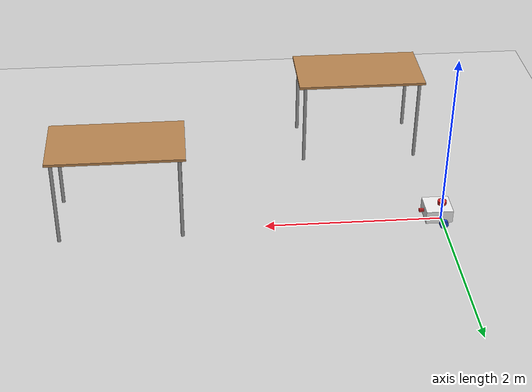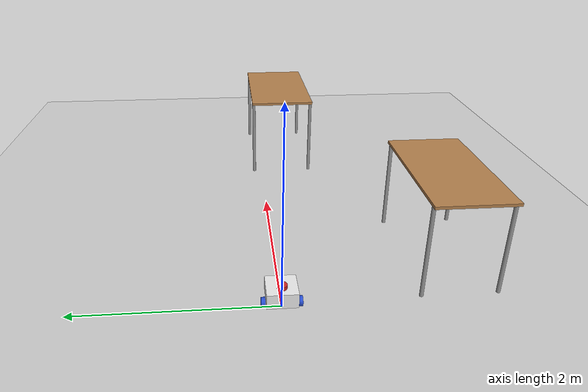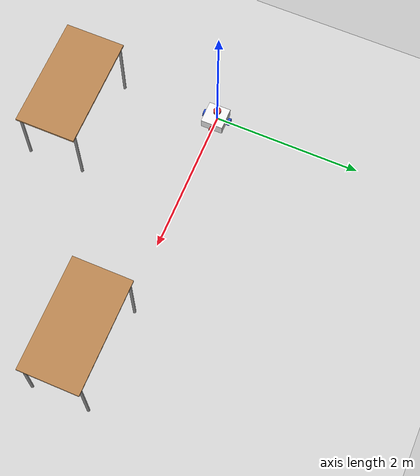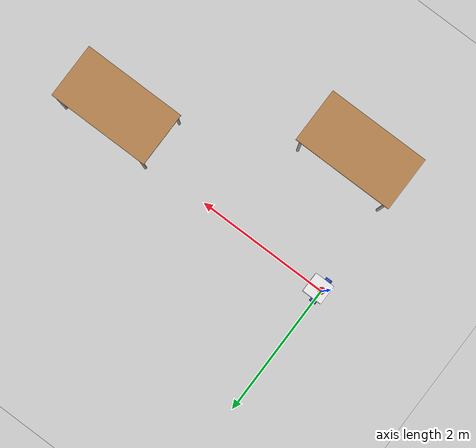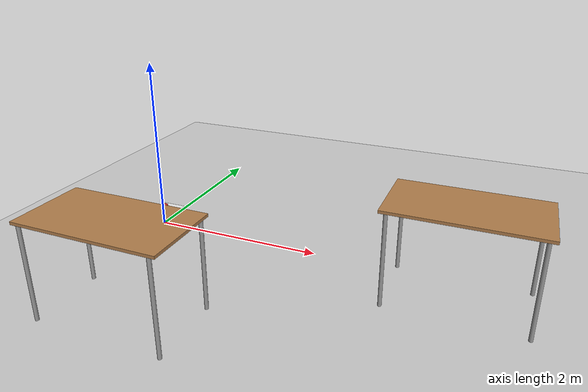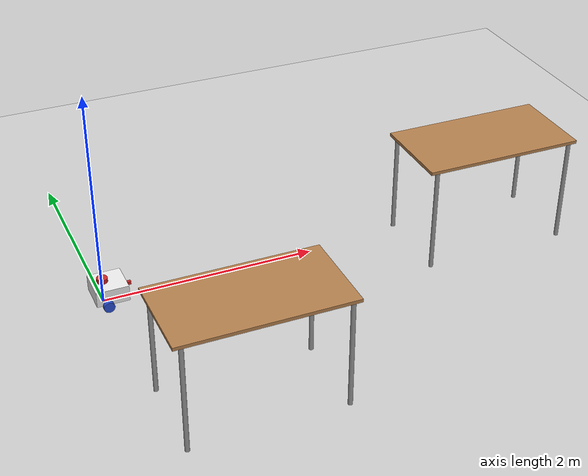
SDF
<sdf version="1.7">
 <world name="default">
  <light name="sun" type="directional">
   <pose>0 0 10 0 -0 0</pose>
   <diffuse>0.8 0.8 0.8 1</diffuse>
   <specular>0.2 0.2 0.2 1</specular>
   <attenuation>
    <range>1000</range>
    <constant>0.9</constant>
    <linear>0.01</linear>
    <quadratic>0.001</quadratic>
   </attenuation>
   <direction>-0.5 0.1 -0.9</direction>
   <spot><inner_angle>0</inner_angle><outer_angle>0</outer_angle><falloff>0</falloff></spot>
  </light>
  <model name="ground_plane">
   <static>1</static>
   <link name="link">
    <collision name="collision">
     <geometry><plane><normal>0 0 1</normal><size>100 100</size></plane></geometry>
     <surface>
      <contact><collide_bitmask>65535</collide_bitmask></contact>
      <friction><ode><mu>100</mu><mu2>50</mu2></ode></friction>
     </surface>
    </collision>
    <visual name="visual">
     <cast_shadows>0</cast_shadows>
     <geometry><plane><normal>0 0 1</normal><size>100 100</size></plane></geometry>
     <material>
      <script><uri>file://media/materials/scripts/gazebo.material</uri><name>Gazebo/Grey</name></script>
     </material>
    </visual>
   </link>
  </model>
  <gravity>0 0 -9.8</gravity>
  <magnetic_field>6e-06 2.3e-05 -4.2e-05</magnetic_field>
  <atmosphere type="adiabatic"/>
  <physics type="ode">
   <max_step_size>0.001</max_step_size>
   <real_time_factor>1</real_time_factor>
   <real_time_update_rate>1000</real_time_update_rate>
  </physics>
  <scene><ambient>0.4 0.4 0.4 1</ambient><background>0.7 0.7 0.7 1</background><shadows>1</shadows></scene>
  <spherical_coordinates>
   <surface_model>EARTH_WGS84</surface_model>
   <latitude_deg>0</latitude_deg>
   <longitude_deg>0</longitude_deg>
   <elevation>0</elevation>
   <heading_deg>0</heading_deg>
  </spherical_coordinates>
  <model name="my_bot">
   <link name="base_link">
    <inertial>
     <pose>0.057143 0 0.078571 0 -0 0</pose>
     <mass>0.7</mass>
     <inertia>
      <ixx>0.0064169</ixx>
      <ixy>0</ixy>
      <ixz>0.00126786</ixz>
      <iyy>0.00763119</iyy>
      <iyz>0</iyz>
      <izz>0.00893929</izz>
     </inertia>
    </inertial>
    <collision name="base_link_fixed_joint_lump__caster_wheel_collision">
     <pose>0.15 0 0 0 -0 0</pose>
     <geometry><sphere><radius>0.05</radius></sphere></geometry>
     <surface><friction><ode><mu>0.001</mu><mu2>0.001</mu2></ode></friction></surface>
    </collision>
    <collision name="base_link_fixed_joint_lump__chassis_collision_1">
     <pose>0.05 0 0.075 0 -0 0</pose>
     <geometry><box><size>0.3 0.3 0.15</size></box></geometry>
    </collision>
    <collision name="base_link_fixed_joint_lump__laser_frame_collision_2">
     <pose>0 0 0.175 0 -0 0</pose>
     <geometry><cylinder><length>0.04</length><radius>0.05</radius></cylinder></geometry>
    </collision>
    <visual name="base_link_fixed_joint_lump__caster_wheel_visual">
     <pose>0.15 0 0 0 -0 0</pose>
     <geometry><sphere><radius>0.05</radius></sphere></geometry>
     <material>
      <script><name>Gazebo/Black</name><uri>file://media/materials/scripts/gazebo.material</uri></script>
     </material>
    </visual>
    <visual name="base_link_fixed_joint_lump__chassis_visual_1">
     <pose>0.05 0 0.075 0 -0 0</pose>
     <geometry><box><size>0.3 0.3 0.15</size></box></geometry>
     <material>
      <script><name>Gazebo/White</name><uri>file://media/materials/scripts/gazebo.material</uri></script>
     </material>
    </visual>
    <visual name="base_link_fixed_joint_lump__camera_link_visual_2">
     <pose>0.205 0 0.08 0 -0 0</pose>
     <geometry><box><size>0.1 0.03 0.03</size></box></geometry>
     <material>
      <script><name>Gazebo/Red</name><uri>file://media/materials/scripts/gazebo.material</uri></script>
     </material>
    </visual>
    <visual name="base_link_fixed_joint_lump__laser_frame_visual_3">
     <pose>0 0 0.175 0 -0 0</pose>
     <geometry><cylinder><length>0.04</length><radius>0.05</radius></cylinder></geometry>
     <material>
      <script><name>Gazebo/Red</name><uri>file://media/materials/scripts/gazebo.material</uri></script>
     </material>
    </visual>
    <sensor name="camera" type="camera">
     <visualize>1</visualize>
     <update_rate>10</update_rate>
     <camera>
      <horizontal_fov>1.089</horizontal_fov>
      <image><format>RGB8B8</format><width>640</width><height>480</height></image>
      <clip><near>0.05</near><far>8</far></clip>
     </camera>
     <plugin name="camera_controller" filename="libgazebo_ros_camera.so">
      <frame_name>camera_link_optical</frame_name>
     </plugin>
     <pose>0.205 0 0.08 0 -0 0</pose>
    </sensor>
    <sensor name="laser" type="ray">
     <visualize>0</visualize>
     <update_rate>10</update_rate>
     <ray>
      <scan>
       <horizontal>
        <samples>360</samples>
        <min_angle>-3.14</min_angle>
        <max_angle>3.14</max_angle>
        <resolution>1</resolution>
       </horizontal>
       <vertical><samples>1</samples><min_angle>0</min_angle><max_angle>0</max_angle></vertical>
      </scan>
      <range><min>0.3</min><max>12</max></range>
     </ray>
     <plugin name="laser_controller" filename="libgazebo_ros_ray_sensor.so">
      <ros><argument>~/out:=scan</argument></ros>
      <output_type>sensor_msgs/LaserScan</output_type>
      <frame_name>laser_frame</frame_name>
     </plugin>
     <pose>0 0 0.175 0 -0 0</pose>
    </sensor>
   </link>
   <joint name="left_wheel_joint" type="revolute">
    <pose relative_to="base_link">0 0.175 0 -1.5708 0 0</pose>
    <parent>base_link</parent>
    <child>left_wheel</child>
    <axis>
     <xyz>0 0 1</xyz>
     <limit><lower>-1e+16</lower><upper>1e+16</upper></limit>
     <dynamics><spring_reference>0</spring_reference><spring_stiffness>0</spring_stiffness></dynamics>
    </axis>
   </joint>
   <link name="left_wheel">
    <pose relative_to="left_wheel_joint">0 0 0 0 -0 0</pose>
    <inertial>
     <mass>0.1</mass>
     <inertia>
      <ixx>7.58333e-05</ixx>
      <ixy>0</ixy>
      <ixz>0</ixz>
      <iyy>7.58333e-05</iyy>
      <iyz>0</iyz>
      <izz>0.000125</izz>
     </inertia>
    </inertial>
    <collision name="left_wheel_collision">
     <geometry><cylinder><length>0.04</length><radius>0.05</radius></cylinder></geometry>
    </collision>
    <visual name="left_wheel_visual">
     <geometry><cylinder><length>0.04</length><radius>0.05</radius></cylinder></geometry>
     <material>
      <script><name>Gazebo/Blue</name><uri>file://media/materials/scripts/gazebo.material</uri></script>
     </material>
    </visual>
   </link>
   <joint name="right_wheel_joint" type="revolute">
    <pose relative_to="base_link">0 -0.175 0 1.5708 -0 0</pose>
    <parent>base_link</parent>
    <child>right_wheel</child>
    <axis>
     <xyz>0 0 -1</xyz>
     <limit><lower>-1e+16</lower><upper>1e+16</upper></limit>
     <dynamics><spring_reference>0</spring_reference><spring_stiffness>0</spring_stiffness></dynamics>
    </axis>
   </joint>
   <link name="right_wheel">
    <pose relative_to="right_wheel_joint">0 0 0 0 -0 0</pose>
    <inertial>
     <mass>0.1</mass>
     <inertia>
      <ixx>7.58333e-05</ixx>
      <ixy>0</ixy>
      <ixz>0</ixz>
      <iyy>7.58333e-05</iyy>
      <iyz>0</iyz>
      <izz>0.000125</izz>
     </inertia>
    </inertial>
    <collision name="right_wheel_collision">
     <geometry><cylinder><length>0.04</length><radius>0.05</radius></cylinder></geometry>
    </collision>
    <visual name="right_wheel_visual">
     <geometry><cylinder><length>0.04</length><radius>0.05</radius></cylinder></geometry>
     <material>
      <script><name>Gazebo/Blue</name><uri>file://media/materials/scripts/gazebo.material</uri></script>
     </material>
    </visual>
   </link>
   <plugin name="gazebo_ros2_control" filename="libgazebo_ros2_control.so">
    <parameters>/home/user/ros2_ws/install/med_bot/share/med_bot/config/my_controllers.yaml</parameters>
    <parameters>/home/user/ros2_ws/install/med_bot/share/med_bot/config/gaz_ros2_ctrl_use_sim.yaml</parameters>
   </plugin>
   <frame name="base_footprint_joint" attached_to="base_link"/>
   <frame name="base_footprint" attached_to="base_footprint_joint"/>
   <frame name="caster_wheel_joint" attached_to="base_link"><pose>0.15 0 0 0 -0 0</pose></frame>
   <frame name="caster_wheel" attached_to="caster_wheel_joint"/>
   <frame name="camera_optical_joint" attached_to="camera_link"><pose>0 0 0 -1.5708 -0 -1.5708</pose></frame>
   <frame name="camera_link_optical" attached_to="camera_optical_joint"/>
   <frame name="camera_joint" attached_to="chassis"><pose>0.305 0 0.08 0 -0 0</pose></frame>
   <frame name="camera_link" attached_to="camera_joint"/>
   <frame name="laser_joint" attached_to="chassis"><pose>0.1 0 0.175 0 -0 0</pose></frame>
   <frame name="laser_frame" attached_to="laser_joint"/>
   <frame name="chassis_joint" attached_to="base_link"><pose>-0.1 0 0 0 -0 0</pose></frame>
   <frame name="chassis" attached_to="chassis_joint"/>
   <pose>0.008272 -0.000143 0.05 0 1e-06 0.000423</pose>
  </model>
  <model name="table">
   <static>1</static>
   <link name="link">
    <collision name="surface">
     <pose>0 0 1 0 -0 0</pose>
     <geometry><box><size>1.5 0.8 0.03</size></box></geometry>
     <surface><friction><ode><mu>0.6</mu><mu2>0.6</mu2></ode></friction></surface>
    </collision>
    <visual name="visual1">
     <pose>0 0 1 0 -0 0</pose>
     <geometry><box><size>1.5 0.8 0.03</size></box></geometry>
     <material>
      <script><uri>file://media/materials/scripts/gazebo.material</uri><name>Gazebo/Wood</name></script>
     </material>
    </visual>
    <collision name="front_left_leg">
     <pose>0.68 0.38 0.5 0 -0 0</pose>
     <geometry><cylinder><radius>0.02</radius><length>1</length></cylinder></geometry>
    </collision>
    <visual name="front_left_leg">
     <pose>0.68 0.38 0.5 0 -0 0</pose>
     <geometry><cylinder><radius>0.02</radius><length>1</length></cylinder></geometry>
     <material>
      <script><uri>file://media/materials/scripts/gazebo.material</uri><name>Gazebo/Grey</name></script>
     </material>
    </visual>
    <collision name="front_right_leg">
     <pose>0.68 -0.38 0.5 0 -0 0</pose>
     <geometry><cylinder><radius>0.02</radius><length>1</length></cylinder></geometry>
    </collision>
    <visual name="front_right_leg">
     <pose>0.68 -0.38 0.5 0 -0 0</pose>
     <geometry><cylinder><radius>0.02</radius><length>1</length></cylinder></geometry>
     <material>
      <script><uri>file://media/materials/scripts/gazebo.material</uri><name>Gazebo/Grey</name></script>
     </material>
    </visual>
    <collision name="back_right_leg">
     <pose>-0.68 -0.38 0.5 0 -0 0</pose>
     <geometry><cylinder><radius>0.02</radius><length>1</length></cylinder></geometry>
    </collision>
    <visual name="back_right_leg">
     <pose>-0.68 -0.38 0.5 0 -0 0</pose>
     <geometry><cylinder><radius>0.02</radius><length>1</length></cylinder></geometry>
     <material>
      <script><uri>file://media/materials/scripts/gazebo.material</uri><name>Gazebo/Grey</name></script>
     </material>
    </visual>
    <collision name="back_left_leg">
     <pose>-0.68 0.38 0.5 0 -0 0</pose>
     <geometry><cylinder><radius>0.02</radius><length>1</length></cylinder></geometry>
    </collision>
    <visual name="back_left_leg">
     <pose>-0.68 0.38 0.5 0 -0 0</pose>
     <geometry><cylinder><radius>0.02</radius><length>1</length></cylinder></geometry>
     <material>
      <script><uri>file://media/materials/scripts/gazebo.material</uri><name>Gazebo/Grey</name></script>
     </material>
    </visual>
   </link>
   <pose>0.734349 -1.72805 0 0 -0 0</pose>
  </model>
  <model name="table_0">
   <static>1</static>
   <link name="link">
    <collision name="surface">
     <pose>0 0 1 0 -0 0</pose>
     <geometry><box><size>1.5 0.8 0.03</size></box></geometry>
     <surface><friction><ode><mu>0.6</mu><mu2>0.6</mu2></ode></friction></surface>
    </collision>
    <visual name="visual1">
     <pose>0 0 1 0 -0 0</pose>
     <geometry><box><size>1.5 0.8 0.03</size></box></geometry>
     <material>
      <script><uri>file://media/materials/scripts/gazebo.material</uri><name>Gazebo/Wood</name></script>
     </material>
    </visual>
    <collision name="front_left_leg">
     <pose>0.68 0.38 0.5 0 -0 0</pose>
     <geometry><cylinder><radius>0.02</radius><length>1</length></cylinder></geometry>
    </collision>
    <visual name="front_left_leg">
     <pose>0.68 0.38 0.5 0 -0 0</pose>
     <geometry><cylinder><radius>0.02</radius><length>1</length></cylinder></geometry>
     <material>
      <script><uri>file://media/materials/scripts/gazebo.material</uri><name>Gazebo/Grey</name></script>
     </material>
    </visual>
    <collision name="front_right_leg">
     <pose>0.68 -0.38 0.5 0 -0 0</pose>
     <geometry><cylinder><radius>0.02</radius><length>1</length></cylinder></geometry>
    </collision>
    <visual name="front_right_leg">
     <pose>0.68 -0.38 0.5 0 -0 0</pose>
     <geometry><cylinder><radius>0.02</radius><length>1</length></cylinder></geometry>
     <material>
      <script><uri>file://media/materials/scripts/gazebo.material</uri><name>Gazebo/Grey</name></script>
     </material>
    </visual>
    <collision name="back_right_leg">
     <pose>-0.68 -0.38 0.5 0 -0 0</pose>
     <geometry><cylinder><radius>0.02</radius><length>1</length></cylinder></geometry>
    </collision>
    <visual name="back_right_leg">
     <pose>-0.68 -0.38 0.5 0 -0 0</pose>
     <geometry><cylinder><radius>0.02</radius><length>1</length></cylinder></geometry>
     <material>
      <script><uri>file://media/materials/scripts/gazebo.material</uri><name>Gazebo/Grey</name></script>
     </material>
    </visual>
    <collision name="back_left_leg">
     <pose>-0.68 0.38 0.5 0 -0 0</pose>
     <geometry><cylinder><radius>0.02</radius><length>1</length></cylinder></geometry>
    </collision>
    <visual name="back_left_leg">
     <pose>-0.68 0.38 0.5 0 -0 0</pose>
     <geometry><cylinder><radius>0.02</radius><length>1</length></cylinder></geometry>
     <material>
      <script><uri>file://media/materials/scripts/gazebo.material</uri><name>Gazebo/Grey</name></script>
     </material>
    </visual>
   </link>
   <pose>3.60672 -0.282591 0 0 -0 0</pose>
  </model>
 </world>
</sdf>
